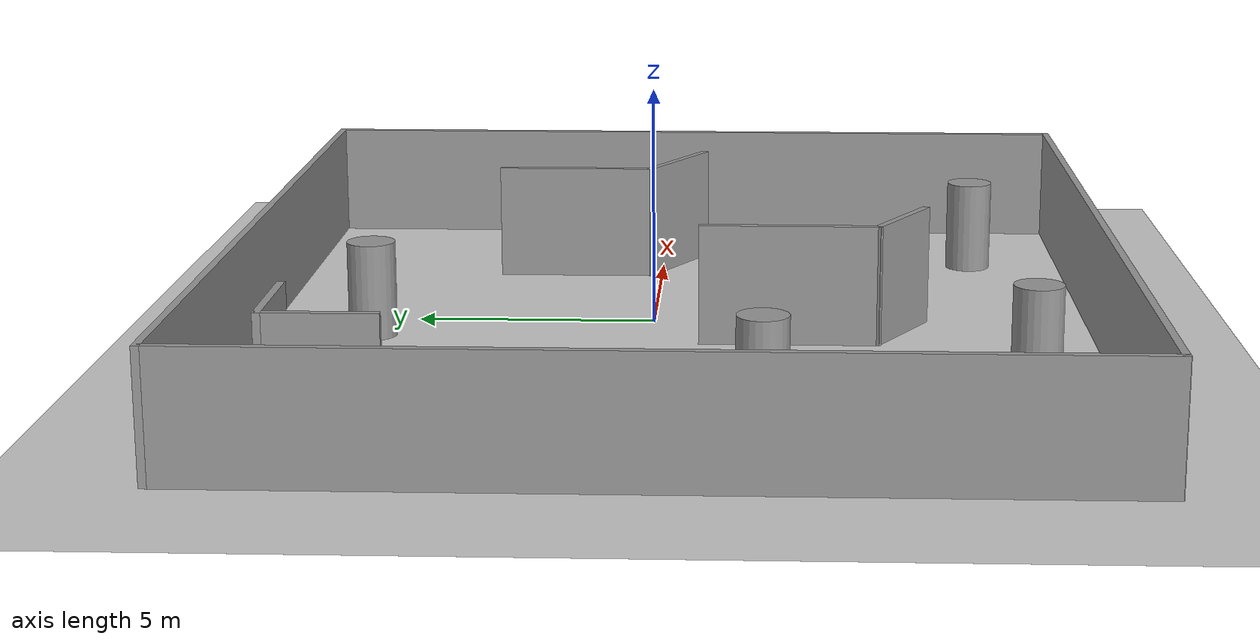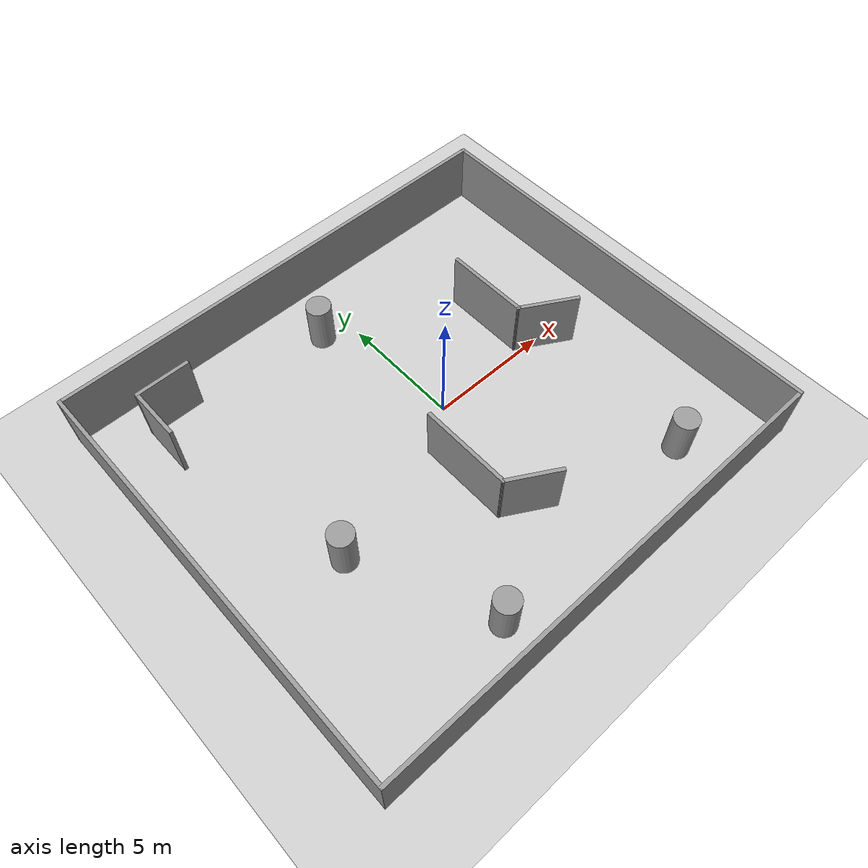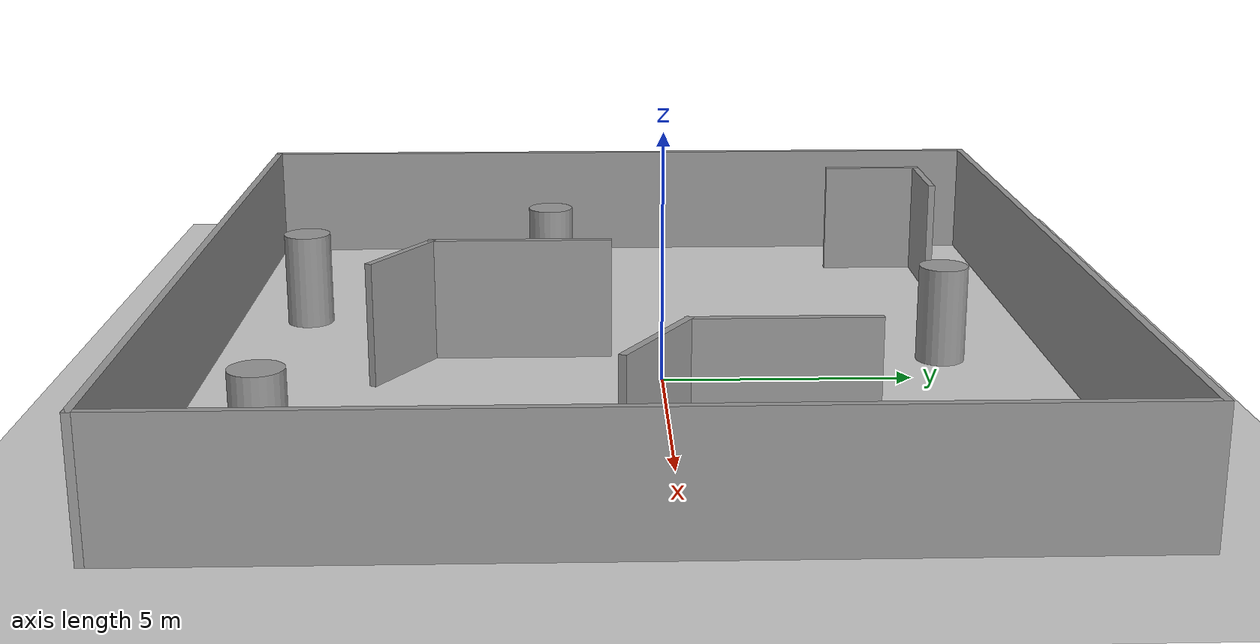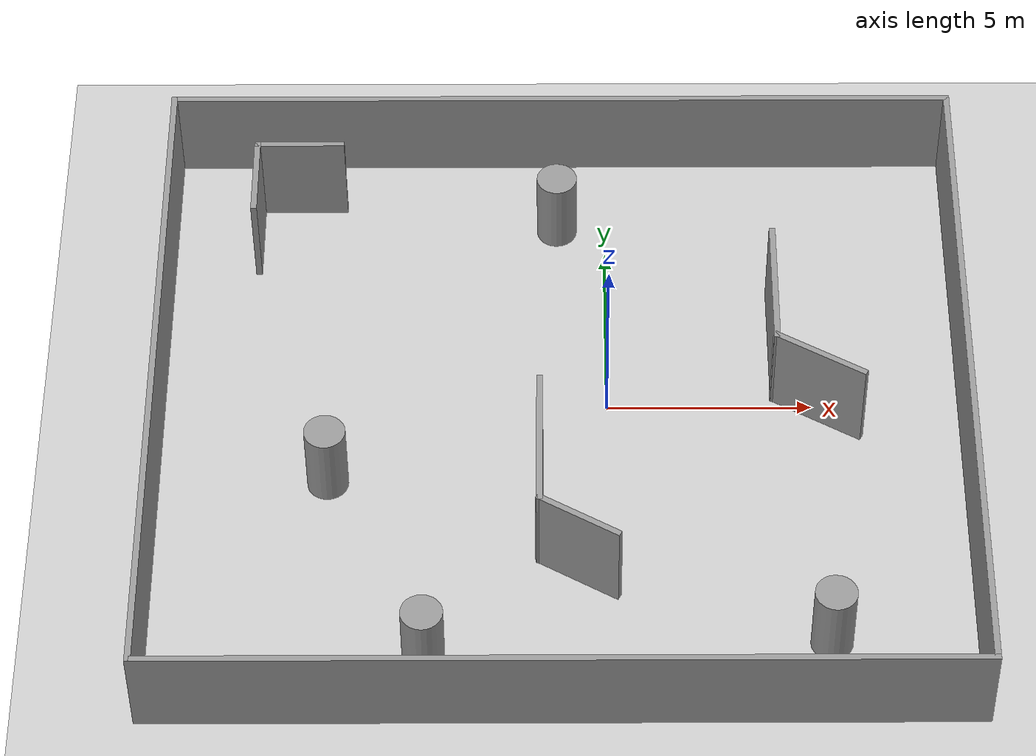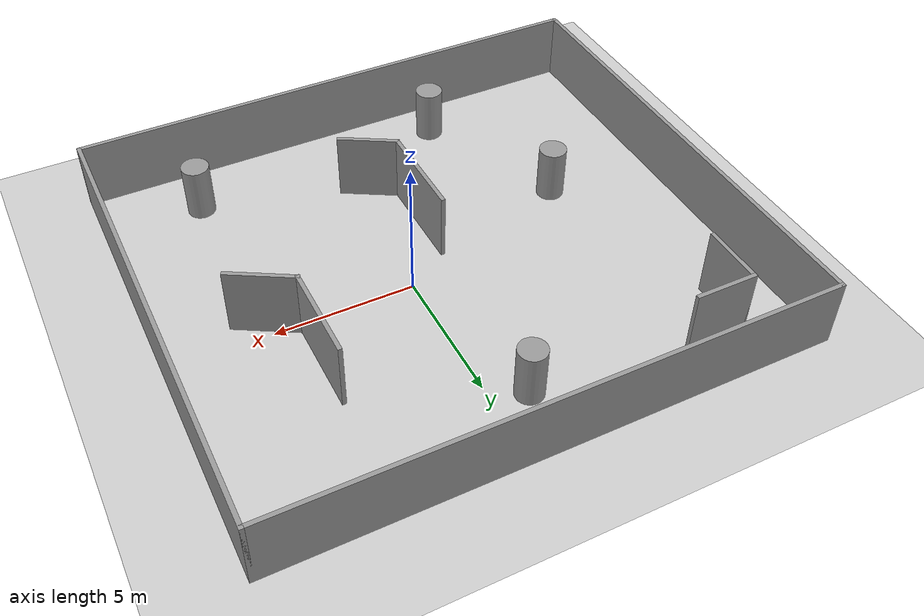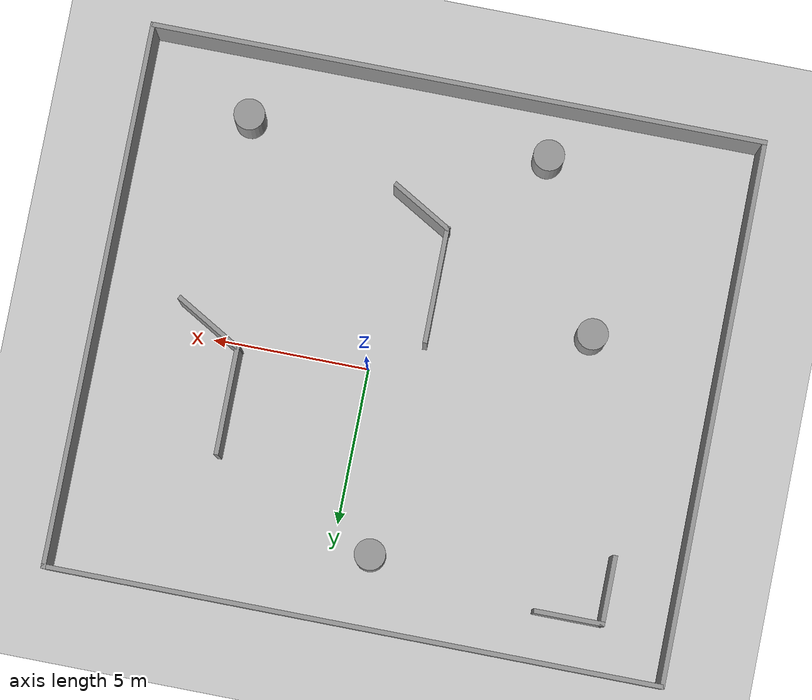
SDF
<sdf version="1.7">
 <world name="default">
  <light name="sun" type="directional">
   <pose>0 0 10 0 -0 0</pose>
   <diffuse>0.8 0.8 0.8 1</diffuse>
   <specular>0.2 0.2 0.2 1</specular>
   <attenuation>
    <range>1000</range>
    <constant>0.9</constant>
    <linear>0.01</linear>
    <quadratic>0.001</quadratic>
   </attenuation>
   <direction>-0.5 0.1 -0.9</direction>
   <spot><inner_angle>0</inner_angle><outer_angle>0</outer_angle><falloff>0</falloff></spot>
  </light>
  <model name="ground_plane">
   <static>1</static>
   <link name="link">
    <collision name="collision">
     <geometry><plane><normal>0 0 1</normal><size>100 100</size></plane></geometry>
     <surface>
      <contact><collide_bitmask>65535</collide_bitmask></contact>
      <friction><ode><mu>100</mu><mu2>50</mu2></ode></friction>
     </surface>
    </collision>
    <visual name="visual">
     <cast_shadows>0</cast_shadows>
     <geometry><plane><normal>0 0 1</normal><size>100 100</size></plane></geometry>
     <material>
      <script><uri>file://media/materials/scripts/gazebo.material</uri><name>Gazebo/Grey</name></script>
     </material>
    </visual>
   </link>
  </model>
  <gravity>0 0 -9.8</gravity>
  <magnetic_field>6e-06 2.3e-05 -4.2e-05</magnetic_field>
  <atmosphere type="adiabatic"/>
  <physics type="ode">
   <max_step_size>0.001</max_step_size>
   <real_time_factor>1</real_time_factor>
   <real_time_update_rate>1000</real_time_update_rate>
  </physics>
  <scene><ambient>0.4 0.4 0.4 1</ambient><background>0.7 0.7 0.7 1</background><shadows>1</shadows></scene>
  <audio><device>default</device></audio>
  <spherical_coordinates>
   <surface_model>EARTH_WGS84</surface_model>
   <latitude_deg>0</latitude_deg>
   <longitude_deg>0</longitude_deg>
   <elevation>0</elevation>
   <heading_deg>0</heading_deg>
  </spherical_coordinates>
  <model name="landscape">
   <pose>-1.1215 -0.552249 0 0 -0 0</pose>
   <link name="Wall_0">
    <collision name="Wall_0_Collision">
     <geometry><box><size>17.5 0.15 2.5</size></box></geometry>
     <pose>0 0 1.25 0 -0 0</pose>
    </collision>
    <visual name="Wall_0_Visual">
     <pose>0 0 1.25 0 -0 0</pose>
     <geometry><box><size>17.5 0.15 2.5</size></box></geometry>
     <material>
      <script><uri>file://media/materials/scripts/gazebo.material</uri><name>Gazebo/Grey</name></script>
      <ambient>1 1 1 1</ambient>
     </material>
     <meta><layer>0</layer></meta>
    </visual>
    <pose>-9.8 0.005749 0 0 -0 -1.5708</pose>
   </link>
   <link name="Wall_1">
    <collision name="Wall_1_Collision">
     <geometry><box><size>19.75 0.15 2.5</size></box></geometry>
     <pose>0 0 1.25 0 -0 0</pose>
    </collision>
    <visual name="Wall_1_Visual">
     <pose>0 0 1.25 0 -0 0</pose>
     <geometry><box><size>19.75 0.15 2.5</size></box></geometry>
     <material>
      <script><uri>file://media/materials/scripts/gazebo.material</uri><name>Gazebo/Grey</name></script>
      <ambient>1 1 1 1</ambient>
     </material>
     <meta><layer>0</layer></meta>
    </visual>
    <pose>0 -8.68075 0 0 -0 0</pose>
   </link>
   <link name="Wall_11">
    <collision name="Wall_11_Collision">
     <geometry><box><size>2.25 0.15 2.5</size></box></geometry>
     <pose>0 0 1.25 0 -0 0</pose>
    </collision>
    <visual name="Wall_11_Visual">
     <pose>0 0 1.25 0 -0 0</pose>
     <geometry><box><size>2.25 0.15 2.5</size></box></geometry>
     <material>
      <script><uri>file://media/materials/scripts/gazebo.material</uri><name>Gazebo/Grey</name></script>
      <ambient>1 1 1 1</ambient>
     </material>
     <meta><layer>0</layer></meta>
    </visual>
    <pose>-7.61736 6.07413 0 0 -0 -1.5708</pose>
   </link>
   <link name="Wall_13">
    <collision name="Wall_13_Collision">
     <geometry><box><size>3.75 0.15 2.5</size></box></geometry>
     <pose>0 0 1.25 0 -0 0</pose>
    </collision>
    <visual name="Wall_13_Visual">
     <pose>0 0 1.25 0 -0 0</pose>
     <geometry><box><size>3.75 0.15 2.5</size></box></geometry>
     <material>
      <script><uri>file://media/materials/scripts/gazebo.material</uri><name>Gazebo/Grey</name></script>
      <ambient>1 1 1 1</ambient>
     </material>
     <meta><layer>0</layer></meta>
    </visual>
    <pose>-0.526283 -2.30605 0 0 -0 -1.5708</pose>
   </link>
   <link name="Wall_14">
    <collision name="Wall_14_Collision">
     <geometry><box><size>2.25 0.15 2.5</size></box></geometry>
     <pose>0 0 1.25 0 -0 0</pose>
    </collision>
    <visual name="Wall_14_Visual">
     <pose>0 0 1.25 0 -0 0</pose>
     <geometry><box><size>2.25 0.15 2.5</size></box></geometry>
     <material>
      <script><uri>file://media/materials/scripts/gazebo.material</uri><name>Gazebo/Grey</name></script>
      <ambient>1 1 1 1</ambient>
     </material>
     <meta><layer>0</layer></meta>
    </visual>
    <pose>0.383044 -4.63105 0 0 -0 -0.523599</pose>
   </link>
   <link name="Wall_16">
    <collision name="Wall_16_Collision">
     <geometry><box><size>3.5 0.15 2.5</size></box></geometry>
     <pose>0 0 1.25 0 -0 0</pose>
    </collision>
    <visual name="Wall_16_Visual">
     <pose>0 0 1.25 0 -0 0</pose>
     <geometry><box><size>3.5 0.15 2.5</size></box></geometry>
     <material>
      <script><uri>file://media/materials/scripts/gazebo.material</uri><name>Gazebo/Grey</name></script>
      <ambient>1 1 1 1</ambient>
     </material>
     <meta><layer>0</layer></meta>
    </visual>
    <pose>5.20786 2.49772 0 0 -0 -1.5708</pose>
   </link>
   <link name="Wall_17">
    <collision name="Wall_17_Collision">
     <geometry><box><size>2.5 0.15 2.5</size></box></geometry>
     <pose>0 0 1.25 0 -0 0</pose>
    </collision>
    <visual name="Wall_17_Visual">
     <pose>0 0 1.25 0 -0 0</pose>
     <geometry><box><size>2.5 0.15 2.5</size></box></geometry>
     <material>
      <script><uri>file://media/materials/scripts/gazebo.material</uri><name>Gazebo/Grey</name></script>
      <ambient>1 1 1 1</ambient>
     </material>
     <meta><layer>0</layer></meta>
    </visual>
    <pose>6.22544 0.235225 0 0 -0 -0.523599</pose>
   </link>
   <link name="Wall_3">
    <collision name="Wall_3_Collision">
     <geometry><box><size>19.75 0.15 2.5</size></box></geometry>
     <pose>0 0 1.25 0 -0 0</pose>
    </collision>
    <visual name="Wall_3_Visual">
     <pose>0 0 1.25 0 -0 0</pose>
     <geometry><box><size>19.75 0.15 2.5</size></box></geometry>
     <material>
      <script><uri>file://media/materials/scripts/gazebo.material</uri><name>Gazebo/Grey</name></script>
      <ambient>1 1 1 1</ambient>
     </material>
     <meta><layer>0</layer></meta>
    </visual>
    <pose>0 8.68075 0 0 -0 0</pose>
   </link>
   <link name="Wall_4">
    <collision name="Wall_4_Collision">
     <geometry><box><size>17.5 0.15 2.5</size></box></geometry>
     <pose>0 0 1.25 0 -0 0</pose>
    </collision>
    <visual name="Wall_4_Visual">
     <pose>0 0 1.25 0 -0 0</pose>
     <geometry><box><size>17.5 0.15 2.5</size></box></geometry>
     <material>
      <script><uri>file://media/materials/scripts/gazebo.material</uri><name>Gazebo/Grey</name></script>
      <ambient>1 1 1 1</ambient>
     </material>
     <meta><layer>0</layer></meta>
    </visual>
    <pose>9.8 0.005749 0 0 -0 -1.5708</pose>
   </link>
   <link name="Wall_9">
    <collision name="Wall_9_Collision">
     <geometry><box><size>2.25 0.15 2.5</size></box></geometry>
     <pose>0 0 1.25 0 -0 0</pose>
    </collision>
    <visual name="Wall_9_Visual">
     <pose>0 0 1.25 0 -0 0</pose>
     <geometry><box><size>2.25 0.15 2.5</size></box></geometry>
     <material>
      <script><uri>file://media/materials/scripts/gazebo.material</uri><name>Gazebo/Grey</name></script>
      <ambient>1 1 1 1</ambient>
     </material>
     <meta><layer>0</layer></meta>
    </visual>
    <pose>-6.56736 7.12413 0 0 -0 0</pose>
   </link>
   <static>1</static>
  </model>
  <model name="unit_cylinder">
   <link name="link">
    <inertial>
     <mass>1</mass>
     <inertia><ixx>0.145833</ixx><ixy>0</ixy><ixz>0</ixz><iyy>0.145833</iyy><iyz>0</iyz><izz>0.125</izz></inertia>
    </inertial>
    <visual name="visual">
     <geometry><cylinder><radius>0.5</radius><length>2</length></cylinder></geometry>
     <material>
      <script><name>Gazebo/Grey</name><uri>file://media/materials/scripts/gazebo.material</uri></script>
      <shader type="pixel"><normal_map>__default__</normal_map></shader>
      <ambient>0.3 0.3 0.3 1</ambient>
      <diffuse>0.7 0.7 0.7 1</diffuse>
      <specular>0.01 0.01 0.01 1</specular>
      <emissive>0 0 0 1</emissive>
     </material>
    </visual>
    <collision name="collision">
     <geometry><cylinder><radius>0.5</radius><length>2</length></cylinder></geometry>
     <surface>
      <friction>
       <ode><mu>1</mu><mu2>1</mu2><fdir1>0 0 0</fdir1><slip1>0</slip1><slip2>0</slip2></ode>
       <torsional>
        <coefficient>1</coefficient>
        <patch_radius>0</patch_radius>
        <surface_radius>0</surface_radius>
        <use_patch_radius>1</use_patch_radius>
        <ode><slip>0</slip></ode>
       </torsional>
      </friction>
      <bounce><restitution_coefficient>0</restitution_coefficient><threshold>1e+06</threshold></bounce>
      <contact>
       <collide_without_contact>0</collide_without_contact>
       <collide_without_contact_bitmask>1</collide_without_contact_bitmask>
       <collide_bitmask>1</collide_bitmask>
       <ode>
        <soft_cfm>0</soft_cfm>
        <soft_erp>0.2</soft_erp>
        <kp>1e+13</kp>
        <kd>1</kd>
        <max_vel>0.01</max_vel>
        <min_depth>0</min_depth>
       </ode>
       <bullet>
        <split_impulse>1</split_impulse>
        <split_impulse_penetration_threshold>-0.01</split_impulse_penetration_threshold>
        <soft_cfm>0</soft_cfm>
        <soft_erp>0.2</soft_erp>
        <kp>1e+13</kp>
        <kd>1</kd>
       </bullet>
      </contact>
     </surface>
    </collision>
   </link>
   <static>0</static>
   <pose>-6.76382 -2.30603 0.999991 0 -0 0</pose>
  </model>
  <model name="unit_cylinder_clone">
   <link name="link">
    <inertial>
     <mass>1</mass>
     <inertia><ixx>0.145833</ixx><ixy>0</ixy><ixz>0</ixz><iyy>0.145833</iyy><iyz>0</iyz><izz>0.125</izz></inertia>
    </inertial>
    <visual name="visual">
     <geometry><cylinder><radius>0.5</radius><length>2</length></cylinder></geometry>
     <material>
      <script><name>Gazebo/Grey</name><uri>file://media/materials/scripts/gazebo.material</uri></script>
      <shader type="pixel"><normal_map>__default__</normal_map></shader>
      <ambient>0.3 0.3 0.3 1</ambient>
      <diffuse>0.7 0.7 0.7 1</diffuse>
      <specular>0.01 0.01 0.01 1</specular>
      <emissive>0 0 0 1</emissive>
     </material>
    </visual>
    <collision name="collision">
     <geometry><cylinder><radius>0.5</radius><length>2</length></cylinder></geometry>
     <surface>
      <friction>
       <ode><mu>1</mu><mu2>1</mu2><fdir1>0 0 0</fdir1><slip1>0</slip1><slip2>0</slip2></ode>
       <torsional>
        <coefficient>1</coefficient>
        <patch_radius>0</patch_radius>
        <surface_radius>0</surface_radius>
        <use_patch_radius>1</use_patch_radius>
        <ode><slip>0</slip></ode>
       </torsional>
      </friction>
      <bounce><restitution_coefficient>0</restitution_coefficient><threshold>1e+06</threshold></bounce>
      <contact>
       <collide_without_contact>0</collide_without_contact>
       <collide_without_contact_bitmask>1</collide_without_contact_bitmask>
       <collide_bitmask>1</collide_bitmask>
       <ode>
        <soft_cfm>0</soft_cfm>
        <soft_erp>0.2</soft_erp>
        <kp>1e+13</kp>
        <kd>1</kd>
        <max_vel>0.01</max_vel>
        <min_depth>0</min_depth>
       </ode>
       <bullet>
        <split_impulse>1</split_impulse>
        <split_impulse_penetration_threshold>-0.01</split_impulse_penetration_threshold>
        <soft_cfm>0</soft_cfm>
        <soft_erp>0.2</soft_erp>
        <kp>1e+13</kp>
        <kd>1</kd>
       </bullet>
      </contact>
     </surface>
    </collision>
   </link>
   <static>0</static>
   <pose>5.17783 -7.08091 0.999991 0 -0 0</pose>
  </model>
  <model name="unit_cylinder_clone_0">
   <link name="link">
    <inertial>
     <mass>1</mass>
     <inertia><ixx>0.145833</ixx><ixy>0</ixy><ixz>0</ixz><iyy>0.145833</iyy><iyz>0</iyz><izz>0.125</izz></inertia>
    </inertial>
    <visual name="visual">
     <geometry><cylinder><radius>0.5</radius><length>2</length></cylinder></geometry>
     <material>
      <script><name>Gazebo/Grey</name><uri>file://media/materials/scripts/gazebo.material</uri></script>
      <shader type="pixel"><normal_map>__default__</normal_map></shader>
      <ambient>0.3 0.3 0.3 1</ambient>
      <diffuse>0.7 0.7 0.7 1</diffuse>
      <specular>0.01 0.01 0.01 1</specular>
      <emissive>0 0 0 1</emissive>
     </material>
    </visual>
    <collision name="collision">
     <geometry><cylinder><radius>0.5</radius><length>2</length></cylinder></geometry>
     <surface>
      <friction>
       <ode><mu>1</mu><mu2>1</mu2><fdir1>0 0 0</fdir1><slip1>0</slip1><slip2>0</slip2></ode>
       <torsional>
        <coefficient>1</coefficient>
        <patch_radius>0</patch_radius>
        <surface_radius>0</surface_radius>
        <use_patch_radius>1</use_patch_radius>
        <ode><slip>0</slip></ode>
       </torsional>
      </friction>
      <bounce><restitution_coefficient>0</restitution_coefficient><threshold>1e+06</threshold></bounce>
      <contact>
       <collide_without_contact>0</collide_without_contact>
       <collide_without_contact_bitmask>1</collide_without_contact_bitmask>
       <collide_bitmask>1</collide_bitmask>
       <ode>
        <soft_cfm>0</soft_cfm>
        <soft_erp>0.2</soft_erp>
        <kp>1e+13</kp>
        <kd>1</kd>
        <max_vel>0.01</max_vel>
        <min_depth>0</min_depth>
       </ode>
       <bullet>
        <split_impulse>1</split_impulse>
        <split_impulse_penetration_threshold>-0.01</split_impulse_penetration_threshold>
        <soft_cfm>0</soft_cfm>
        <soft_erp>0.2</soft_erp>
        <kp>1e+13</kp>
        <kd>1</kd>
       </bullet>
      </contact>
     </surface>
    </collision>
   </link>
   <static>0</static>
   <pose>-1.21842 5.81658 0.999991 0 -0 0</pose>
  </model>
  <model name="unit_cylinder_clone_1">
   <link name="link">
    <inertial>
     <mass>1</mass>
     <inertia><ixx>0.145833</ixx><ixy>0</ixy><ixz>0</ixz><iyy>0.145833</iyy><iyz>0</iyz><izz>0.125</izz></inertia>
    </inertial>
    <visual name="visual">
     <geometry><cylinder><radius>0.5</radius><length>2</length></cylinder></geometry>
     <material>
      <script><name>Gazebo/Grey</name><uri>file://media/materials/scripts/gazebo.material</uri></script>
      <shader type="pixel"><normal_map>__default__</normal_map></shader>
      <ambient>0.3 0.3 0.3 1</ambient>
      <diffuse>0.7 0.7 0.7 1</diffuse>
      <specular>0.01 0.01 0.01 1</specular>
      <emissive>0 0 0 1</emissive>
     </material>
    </visual>
    <collision name="collision">
     <geometry><cylinder><radius>0.5</radius><length>2</length></cylinder></geometry>
     <surface>
      <friction>
       <ode><mu>1</mu><mu2>1</mu2><fdir1>0 0 0</fdir1><slip1>0</slip1><slip2>0</slip2></ode>
       <torsional>
        <coefficient>1</coefficient>
        <patch_radius>0</patch_radius>
        <surface_radius>0</surface_radius>
        <use_patch_radius>1</use_patch_radius>
        <ode><slip>0</slip></ode>
       </torsional>
      </friction>
      <bounce><restitution_coefficient>0</restitution_coefficient><threshold>1e+06</threshold></bounce>
      <contact>
       <collide_without_contact>0</collide_without_contact>
       <collide_without_contact_bitmask>1</collide_without_contact_bitmask>
       <collide_bitmask>1</collide_bitmask>
       <ode>
        <soft_cfm>0</soft_cfm>
        <soft_erp>0.2</soft_erp>
        <kp>1e+13</kp>
        <kd>1</kd>
        <max_vel>0.01</max_vel>
        <min_depth>0</min_depth>
       </ode>
       <bullet>
        <split_impulse>1</split_impulse>
        <split_impulse_penetration_threshold>-0.01</split_impulse_penetration_threshold>
        <soft_cfm>0</soft_cfm>
        <soft_erp>0.2</soft_erp>
        <kp>1e+13</kp>
        <kd>1</kd>
       </bullet>
      </contact>
     </surface>
    </collision>
   </link>
   <static>0</static>
   <pose>-4.35369 -7.60722 0.999991 0 -0 0</pose>
  </model>
 </world>
</sdf>
